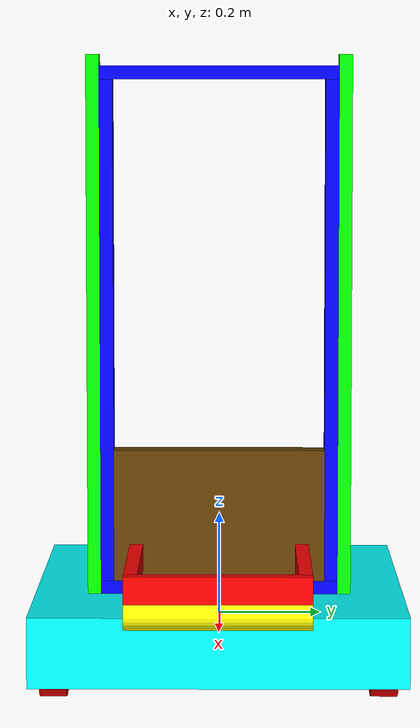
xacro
<?xml version="1.0"?>

<!-- REP 103: X=Forward, Y=Left, Z=Up -->

<robot name="2019_robot" xmlns:xacro="http://www.ros.org/wiki/xacro">

  <xacro:include filename="../common/gazebo.xacro"/>
  <xacro:include filename="../common/materials.xacro"/>
  <xacro:include filename="../common/simple_shapes.xacro"/>
  <xacro:include filename="parameters.xacro"/>

  <!-- Macros -->

  <xacro:macro name="drive_wheel" params="name xyz:='0 0 0' rpy:='${-pi/2} 0 0' color:='Red' mimic:=''">
    <joint name="${name}_joint" type="continuous">

      <origin xyz="${xyz}" rpy="${rpy}"/>
      <axis xyz="0 0 1"/>
      <parent link="base_link"/>
      <child link="${name}"/>

      <xacro:if value="${mimic != ''}">
        <!-- This does nothing -->
        <mimic joint="${mimic}_joint"/>
      </xacro:if>
      <xacro:unless value="${mimic != ''}">
        <sensor name="${name}_joint_enc" type="encoder"/>
      </xacro:unless>
    </joint>

    <xacro:if value="${mimic != ''}">
      <gazebo>
        <joint name="${name}_joint_gearbox" type="gearbox">
          <parent>${mimic}</parent>
          <child>${name}</child>
          <gearbox_reference_body>base_link</gearbox_reference_body>
          <gearbox_ratio>-1</gearbox_ratio>
          <axis>
            <xyz>0 1 0</xyz>
          </axis>
          <axis2>
            <xyz>0 1 0</xyz>
          </axis2>
        </joint>
      </gazebo>
    </xacro:if>

    <xacro:uniform_cylinder name="${name}" color="${color}" mass="${wheel_mass}" len="${wheel_thickness}" rad="${wheel_radius}"/>
  </xacro:macro>

  <!-- Main robot geometry -->

  <xacro:uniform_box name="base_link" color="Turquoise" mass="50" lx="${chassis_length}" ly="${chassis_width}" lz="${chassis_height}"/>

  <xacro:uniform_box name="elevator_frame_left" color="Green" mass="1" lx="${2*IN_TO_M}" ly="${1*IN_TO_M}" lz="${elevator_frame_height}" xyz="0 ${0.5*IN_TO_M} ${elevator_frame_height/2}"/>
  <xacro:uniform_box name="elevator_frame_right" color="Green" mass="1" lx="${2*IN_TO_M}" ly="${1*IN_TO_M}" lz="${elevator_frame_height}" xyz="0 ${-0.5*IN_TO_M} ${elevator_frame_height/2}"/>

  <xacro:uniform_box name="stage_base" color="Blue" mass="1" lx="${2*IN_TO_M}" ly="${elevator_width}" lz="${1*IN_TO_M}" xyz="0 0 ${0.5*IN_TO_M}"/>
  <xacro:uniform_box name="stage_top" color="Blue" mass="1" lx="${2*IN_TO_M}" ly="${elevator_width}" lz="${1*IN_TO_M}" xyz="0 0 ${0.5*IN_TO_M}"/>
  <xacro:uniform_box name="stage_left" color="Blue" mass="1" lx="${2*IN_TO_M}" ly="${1*IN_TO_M}" lz="${elevator_stage_height}" xyz="0 ${-0.5*IN_TO_M} ${elevator_stage_height/2}"/>
  <xacro:uniform_box name="stage_right" color="Blue" mass="1" lx="${2*IN_TO_M}" ly="${1*IN_TO_M}" lz="${elevator_stage_height}" xyz="0 ${0.5*IN_TO_M} ${elevator_stage_height/2}"/>

  <xacro:uniform_box name="carriage" color="Gold" mass="2" lx="${2*IN_TO_M}" ly="${elevator_carriage_width}" lz="${elevator_carriage_height}" xyz="0 0 ${elevator_carriage_height/2}"/>

  <xacro:uniform_box name="wrist_left" color="Red" mass="0.5" lx="${wrist_length}" ly="${1*IN_TO_M}" lz="${2*IN_TO_M}" xyz="${wrist_length/2} 0 0"/>
  <xacro:uniform_box name="wrist_right" color="Red" mass="0.5" lx="${wrist_length}" ly="${1*IN_TO_M}" lz="${2*IN_TO_M}" xyz="${wrist_length/2} 0 0"/>
  <xacro:uniform_box name="wrist_end" color="Red" mass="0.5" lx="${1*IN_TO_M}" ly="${wrist_width}" lz="${2*IN_TO_M}" xyz="${0.5*IN_TO_M} 0 0"/>

  <xacro:uniform_cylinder name="cargo_roller" color="Yellow" mass="0.5" len="${wrist_width}" rad="${roller_radius}" xyz="0 0 0" rpy="${pi/2} 0 0"/>

  <!-- Joints -->

  <joint name="elevator_frame_left_joint" type="fixed">
    <origin xyz="${chassis_length/2 - 10.6875*IN_TO_M} ${elevator_width/2} ${chassis_height/2}"/>
    <parent link="base_link"/>
    <child link="elevator_frame_left"/>
  </joint>

  <joint name="elevator_frame_right_joint" type="fixed">
    <origin xyz="${chassis_length/2 -  10.6875*IN_TO_M} ${-elevator_width/2} ${chassis_height/2}"/>
    <parent link="base_link"/>
    <child link="elevator_frame_right"/>
  </joint>

  <joint name="elevator_joint" type="prismatic">
    <axis xyz="0 0 1"/>
    <limit lower="0" upper="${elevator_stage_range}" effort="100" velocity="100"/>
    <origin xyz="0 ${-elevator_width/2} 0"/>
    <parent link="elevator_frame_left"/>
    <child link="stage_base"/>
  </joint>

  <joint name="state_left_joint" type="fixed">
    <origin xyz="0 ${elevator_width/2} ${1*IN_TO_M}"/>
    <parent link="stage_base"/>
    <child link="stage_left"/>
  </joint>

  <joint name="stage_right_joint" type="fixed">
    <origin xyz="0 ${-elevator_width/2}  ${1*IN_TO_M}"/>
    <parent link="stage_base"/>
    <child link="stage_right"/>
  </joint>

  <joint name="stage_top_joint" type="fixed">
    <origin xyz="0 ${-elevator_width/2} ${elevator_stage_height}"/>
    <parent link="stage_left"/>
    <child link="stage_top"/>
  </joint>

  <joint name="carriage_joint" type="prismatic">
    <axis xyz="0 0 1"/>
    <limit lower="0" upper="${elevator_carriage_range}" effort="100" velocity="100"/>
    <origin xyz="0 ${-elevator_carriage_width/2 - 1*IN_TO_M} 0"/>
    <parent link="stage_left"/>
    <child link="carriage"/>
  </joint>
  <gazebo>
    <!-- TODO(matt.reynolds): Replace with Gazebo gearbox joint once gearbox joints support prismatic joints -->
    <!-- Currently, they only support revolute. See https://bitbucket.org/osrf/gazebo/issues/1058 -->
    <plugin name="carriage_joint_mimic_joint_plugin" filename="libroboticsgroup_gazebo_mimic_joint_plugin.so">
      <joint>elevator_joint</joint>
      <mimicJoint>carriage_joint</mimicJoint>
      <robotNamespace>/</robotNamespace>
    </plugin>
  </gazebo>

  <joint name="wrist_joint" type="revolute">
    <axis xyz="0 -1 0"/>
    <limit lower="0" upper="${pi/2}" effort="1" velocity="1"/>
    <origin xyz="${2*IN_TO_M} ${wrist_width/2 - 0.5*IN_TO_M} ${2*IN_TO_M}"/>
    <parent link="carriage"/>
    <child link="wrist_left"/>
  </joint>

  <joint name="wrist_end_joint" type="fixed">
    <origin xyz="${wrist_length} ${-wrist_width/2 + 0.5*IN_TO_M} 0"/>
    <parent link="wrist_left"/>
    <child link="wrist_end"/>
  </joint>

  <joint name="wrist_right_joint" type="fixed">
    <origin xyz="${-wrist_length} ${-wrist_width/2 + 0.5*IN_TO_M} 0"/>
    <parent link="wrist_end"/>
    <child link="wrist_right"/>
  </joint>

  <joint name="roller_joint" type="continuous">
    <axis xyz="0 1 0"/>
    <origin xyz="0 0 ${-2*IN_TO_M}"/>
    <parent link="wrist_end"/>
    <child link="cargo_roller"/>
  </joint>

  <!-- Drive wheels -->
  <xacro:drive_wheel name="lff_wheel" xyz="${wheel_spacing * 1.5}  ${track_width/2} ${wheel_height + wheel_drop}" mimic="lfc_wheel"/>
  <xacro:drive_wheel name="lfc_wheel" xyz="${wheel_spacing * 0.5}  ${track_width/2} ${wheel_height}"/>
  <xacro:drive_wheel name="lrc_wheel" xyz="${wheel_spacing * -0.5} ${track_width/2}  ${wheel_height}"/>
  <xacro:drive_wheel name="lrr_wheel" xyz="${wheel_spacing * -1.5} ${track_width/2}  ${wheel_height + wheel_drop}" mimic="lrc_wheel"/>

  <xacro:drive_wheel name="rff_wheel" xyz="${wheel_spacing * 1.5}  ${-track_width/2} ${wheel_height + wheel_drop}" mimic="rfc_wheel"/>
  <xacro:drive_wheel name="rfc_wheel" xyz="${wheel_spacing * 0.5}  ${-track_width/2} ${wheel_height}"/>
  <xacro:drive_wheel name="rrc_wheel" xyz="${wheel_spacing * -0.5} ${-track_width/2}  ${wheel_height}"/>
  <xacro:drive_wheel name="rrr_wheel" xyz="${wheel_spacing * -1.5} ${-track_width/2}  ${wheel_height + wheel_drop}" mimic="rrc_wheel"/>

  <!-- Sensors -->

  <!-- RoboRIO built-in accelerometer -->
  <gazebo reference="base_link">
    <sensor name="builtin" type="imu">
      <always_on>true</always_on>
      <update_rate>100</update_rate>
      <pose>0 0 0 0 0 0</pose>
    </sensor>
  </gazebo>

  <!-- NavX IMU -->
  <gazebo reference="base_link">
    <sensor name="navx" type="imu">
      <always_on>true</always_on>
      <update_rate>100</update_rate>
      <pose>0 0 0 0 0 0</pose>
    </sensor>
  </gazebo>

  <!-- Load the FRC plugins -->
  <xacro:load_frc_plugin/>
</robot>

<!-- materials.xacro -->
<robot>
  <!-- These materials all match the Gazebo materials. ie Grey corresponds to Gazebo/Grey, etc -->

  <material name="Grey">
    <color rgba="0.3 0.3 0.3 1"/> <!-- TODO: Verify -->
  </material>

  <material name="DarkGrey">
    <color rgba="0.175 0.175 0.175 1"/>
  </material>

  <material name="White">
    <color rgba="1 1 1 1"/>
  </material>

  <material name="FlatBlack">
    <color rgba="0.1 0.1 0.1 1"/>
  </material>

  <material name="Black">
    <color rgba="0 0 0 1"/>
  </material>

  <material name="Red">
    <color rgba="1 0 0 1"/>
  </material>

  <material name="RedBright">
    <color rgba="0.87 0.26 0.07 1"/>
  </material>

  <material name="Green">
    <color rgba="0 1 0 1"/>
  </material>

  <material name="Blue">
    <color rgba="0 0 1 1"/>
  </material>

  <material name="SkyBlue">
    <color rgba="0.13 0.44 0.70 1"/>
  </material>

  <material name="Yellow">
    <color rgba="1 1 0 1"/>
  </material>

    <material name="ZincYellow">
    <color rgba="0.9725 0.9529 0.2078 1"/>
  </material>

  <material name="DarkYellow">
    <color rgba="0.7 0.7 0 1"/>
  </material>

  <material name="Purple">
    <color rgba="1 0 1 1"/>
  </material>

  <material name="Turquoise">
    <color rgba="0 1 1 1"/>
  </material>

  <material name="Orange">
    <color rgba="0 1 1 1"/>
  </material>

  <material name="Indigo">
    <color rgba="0 1 1 1"/>
  </material>

  <material name="Gold">
    <color rgba="0.400000 0.248690 0.020759 1"/>
  </material>

</robot>

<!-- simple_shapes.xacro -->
<robot xmlns:xacro="http://www.ros.org/wiki/xacro">

  <!-- A rectangular prism with uniform density -->
  <xacro:macro name="uniform_box" params="name color mass:=1 lx:=0 ly:=0 lz:=0 xyz:='0 0 0' rpy:='0 0 0'">
    <link name="${name}">
    <inertial>
      <origin xyz="${xyz}" rpy="${rpy}"/>
      <mass value="${mass}"/>
      <inertia ixx="${mass * (ly*ly + lz*lz) / 12}"  ixy="0"  ixz="0"
                iyy="${mass * (lx*lx + lz*lz) / 12}" iyz="0"
                izz="${mass * (lx*lx + ly*ly) / 12}"/>
    </inertial>

      <visual>
      <origin xyz="${xyz}" rpy="${rpy}"/>
      <geometry>
        <box size="${lx} ${ly} ${lz}"/>
      </geometry>
      <material name="${color}"/>
    </visual>

    <collision>
      <origin xyz="${xyz}" rpy="${rpy}"/>
      <geometry>
        <box size="${lx} ${ly} ${lz}"/>
      </geometry>
    </collision>
    </link>

    <gazebo reference="${name}">
      <material>Gazebo/${color}</material>
    </gazebo>
  </xacro:macro>

  <!-- A cylinder with uniform density -->
  <xacro:macro name="uniform_cylinder" params="name color mass:=1 len:=0 rad:=0 xyz:='0 0 0' rpy:='0 0 0'">
    <link name="${name}">
    <inertial>
      <origin xyz="${xyz}" rpy="${rpy}"/>
      <mass value="${mass}"/>
      <inertia ixx="${mass * (3*rad*rad + len*len) / 12}"  ixy="0"  ixz="0"
                iyy="${mass * (3*rad*rad + len*len) / 12}" iyz="0"
                izz="${mass * rad*rad / 2}"/>
    </inertial>

      <visual>
        <origin xyz="${xyz}" rpy="${rpy}"/>
        <geometry>
          <cylinder length="${len}" radius="${rad}"/>
        </geometry>
      <material name="${color}"/>
      </visual>

      <collision>
        <origin xyz="${xyz}" rpy="${rpy}"/>
        <geometry>
          <cylinder length="${len}" radius="${rad}"/>
        </geometry>
    </collision>
    </link>

    <gazebo reference="${name}">
      <material>Gazebo/${color}</material>
    </gazebo>
  </xacro:macro>

</robot>

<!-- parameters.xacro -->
<robot xmlns:xacro="http://www.ros.org/wiki/xacro">

  <xacro:property name="IN_TO_M" value="0.0254"/>
  <xacro:property name="LB_TO_KG" value="0.453592"/>

  <xacro:property name="chassis_height" value="${5.25*IN_TO_M}"/>
  <xacro:property name="chassis_width" value="${28*IN_TO_M}"/>
  <xacro:property name="chassis_length" value="${32*IN_TO_M}"/>

  <xacro:property name="wheel_radius" value="${3*IN_TO_M}"/>
  <xacro:property name="wheel_thickness" value="${2*IN_TO_M}"/>
  <xacro:property name="wheel_mass" value="${1.5*LB_TO_KG}"/>

  <xacro:property name="wheel_spacing" value="${7.5*IN_TO_M}"/>
  <xacro:property name="wheel_height" value="${chassis_height - 6.8767*IN_TO_M}"/>
  <xacro:property name="wheel_drop" value="${0.5*IN_TO_M}"/>
  <xacro:property name="track_width" value="${24.562*IN_TO_M}"/>

  <xacro:property name="elevator_width" value="${18*IN_TO_M}"/>
  <xacro:property name="elevator_frame_height" value="${40.861*IN_TO_M}"/>
  <xacro:property name="elevator_stage_height" value="${38*IN_TO_M}"/>
  <xacro:property name="elevator_carriage_width" value="${elevator_width - 2*IN_TO_M}"/>
  <xacro:property name="elevator_carriage_height" value="${10*IN_TO_M}"/>

  <xacro:property name="wrist_width" value="${13.5*IN_TO_M}"/>
  <xacro:property name="wrist_length" value="${13*IN_TO_M}"/>

  <xacro:property name="roller_radius" value="${1*IN_TO_M}"/>

  <xacro:property name="elevator_stage_range" value="${36*IN_TO_M}"/>
  <xacro:property name="elevator_carriage_range" value="${elevator_stage_height - elevator_carriage_height}"/>
</robot>
